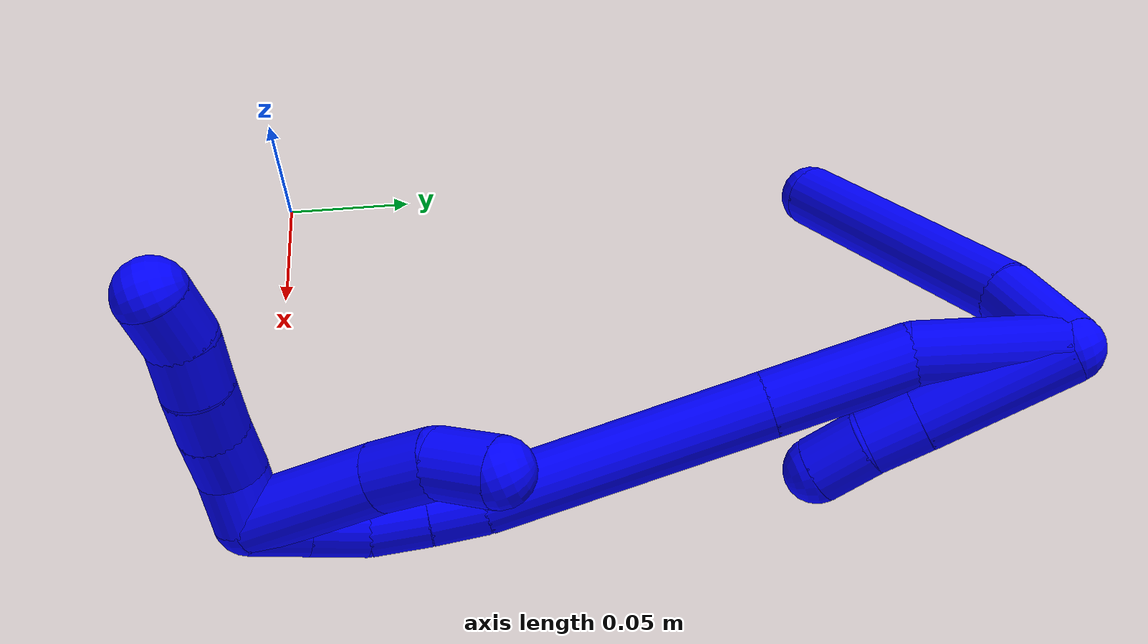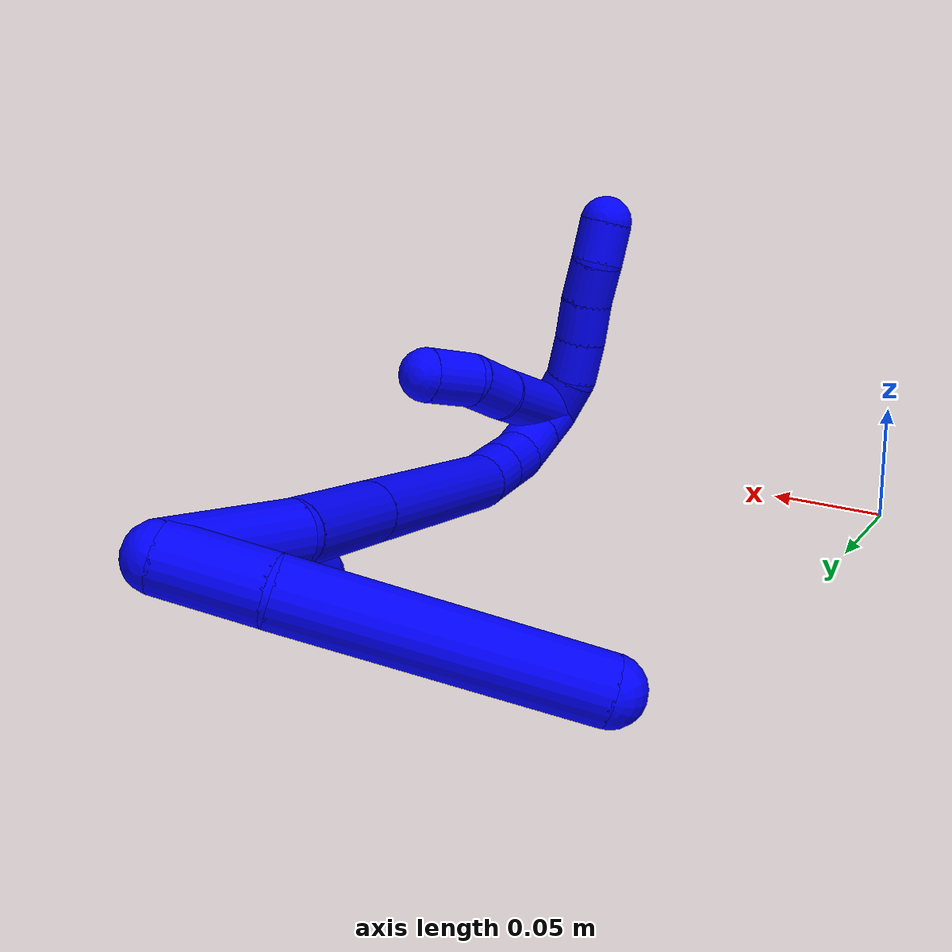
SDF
<sdf version="1.7">
 <world name="default">
  <model name="1">
   <static>0</static>
   <link name="1">
    <collision name="collision-cylinder-e_1_2_8">
     <pose>-0.017676 0.005353 -0.003426 -2.14019 -1.22565 1.81892</pose>
     <geometry><cylinder><radius>0.0125</radius><length>0.037569</length></cylinder></geometry>
     <surface>
      <friction><ode><mu>1.16</mu><mu2>1.16</mu2><slip1>0</slip1><slip2>0</slip2></ode></friction>
      <contact><ode><kp>1e+06</kp><kd>1</kd><max_vel>0</max_vel><min_depth>0.001</min_depth></ode></contact>
     </surface>
    </collision>
    <visual name="visual-cylinder-e_1_2_8">
     <pose>-0.017676 0.005353 -0.003426 -2.14019 -1.22565 1.81892</pose>
     <geometry><cylinder><radius>0.0125</radius><length>0.037569</length></cylinder></geometry>
     <material><ambient>0 0 1 1</ambient></material>
    </visual>
    <collision name="collision-cylinder-e_2_8_6">
     <pose>-0.084607 0.028922 -0.026913 -2.40431 -1.06783 1.98402</pose>
     <geometry><cylinder><radius>0.0125</radius><length>0.112431</length></cylinder></geometry>
     <surface>
      <friction><ode><mu>1.16</mu><mu2>1.16</mu2><slip1>0</slip1><slip2>0</slip2></ode></friction>
      <contact><ode><kp>1e+06</kp><kd>1</kd><max_vel>0</max_vel><min_depth>0.001</min_depth></ode></contact>
     </surface>
    </collision>
    <visual name="visual-cylinder-e_2_8_6">
     <pose>-0.084607 0.028922 -0.026913 -2.40431 -1.06783 1.98402</pose>
     <geometry><cylinder><radius>0.0125</radius><length>0.112431</length></cylinder></geometry>
     <material><ambient>0 0 1 1</ambient></material>
    </visual>
    <collision name="collision-cylinder-e_1_2_9">
     <pose>-0.00109 0.005785 -0.02833 -2.94017 -0.037696 0.36883</pose>
     <geometry><cylinder><radius>0.0125</radius><length>0.05787</length></cylinder></geometry>
     <surface>
      <friction><ode><mu>1.16</mu><mu2>1.16</mu2><slip1>0</slip1><slip2>0</slip2></ode></friction>
      <contact><ode><kp>1e+06</kp><kd>1</kd><max_vel>0</max_vel><min_depth>0.001</min_depth></ode></contact>
     </surface>
    </collision>
    <visual name="visual-cylinder-e_1_2_9">
     <pose>-0.00109 0.005785 -0.02833 -2.94017 -0.037696 0.36883</pose>
     <geometry><cylinder><radius>0.0125</radius><length>0.05787</length></cylinder></geometry>
     <material><ambient>0 0 1 1</ambient></material>
    </visual>
    <collision name="collision-cylinder-e_2_9_10">
     <pose>-0.002714 0.01356 -0.066731 -2.94645 -0.051844 0.517896</pose>
     <geometry><cylinder><radius>0.0125</radius><length>0.02056</length></cylinder></geometry>
     <surface>
      <friction><ode><mu>1.16</mu><mu2>1.16</mu2><slip1>0</slip1><slip2>0</slip2></ode></friction>
      <contact><ode><kp>1e+06</kp><kd>1</kd><max_vel>0</max_vel><min_depth>0.001</min_depth></ode></contact>
     </surface>
    </collision>
    <visual name="visual-cylinder-e_2_9_10">
     <pose>-0.002714 0.01356 -0.066731 -2.94645 -0.051844 0.517896</pose>
     <geometry><cylinder><radius>0.0125</radius><length>0.02056</length></cylinder></geometry>
     <material><ambient>0 0 1 1</ambient></material>
    </visual>
    <collision name="collision-cylinder-e_3_10_5">
     <pose>-0.003728 0.019439 -0.086851 -2.77237 -0.044666 0.238103</pose>
     <geometry><cylinder><radius>0.0125</radius><length>0.02157</length></cylinder></geometry>
     <surface>
      <friction><ode><mu>1.16</mu><mu2>1.16</mu2><slip1>0</slip1><slip2>0</slip2></ode></friction>
      <contact><ode><kp>1e+06</kp><kd>1</kd><max_vel>0</max_vel><min_depth>0.001</min_depth></ode></contact>
     </surface>
    </collision>
    <visual name="visual-cylinder-e_3_10_5">
     <pose>-0.003728 0.019439 -0.086851 -2.77237 -0.044666 0.238103</pose>
     <geometry><cylinder><radius>0.0125</radius><length>0.02157</length></cylinder></geometry>
     <material><ambient>0 0 1 1</ambient></material>
    </visual>
    <collision name="collision-cylinder-e_1_2_11">
     <pose>-0.010254 -0.00016 -0.025338 3.13528 -0.384533 -3.10915</pose>
     <geometry><cylinder><radius>0.0125</radius><length>0.05467</length></cylinder></geometry>
     <surface>
      <friction><ode><mu>1.16</mu><mu2>1.16</mu2><slip1>0</slip1><slip2>0</slip2></ode></friction>
      <contact><ode><kp>1e+06</kp><kd>1</kd><max_vel>0</max_vel><min_depth>0.001</min_depth></ode></contact>
     </surface>
    </collision>
    <visual name="visual-cylinder-e_1_2_11">
     <pose>-0.010254 -0.00016 -0.025338 3.13528 -0.384533 -3.10915</pose>
     <geometry><cylinder><radius>0.0125</radius><length>0.05467</length></cylinder></geometry>
     <material><ambient>0 0 1 1</ambient></material>
    </visual>
    <collision name="collision-cylinder-e_2_11_12">
     <pose>-0.02233 -0.000201 -0.0779 -3.13721 -0.06681 3.01055</pose>
     <geometry><cylinder><radius>0.0125</radius><length>0.054569</length></cylinder></geometry>
     <surface>
      <friction><ode><mu>1.16</mu><mu2>1.16</mu2><slip1>0</slip1><slip2>0</slip2></ode></friction>
      <contact><ode><kp>1e+06</kp><kd>1</kd><max_vel>0</max_vel><min_depth>0.001</min_depth></ode></contact>
     </surface>
    </collision>
    <visual name="visual-cylinder-e_2_11_12">
     <pose>-0.02233 -0.000201 -0.0779 -3.13721 -0.06681 3.01055</pose>
     <geometry><cylinder><radius>0.0125</radius><length>0.054569</length></cylinder></geometry>
     <material><ambient>0 0 1 1</ambient></material>
    </visual>
    <collision name="collision-cylinder-e_3_12_13">
     <pose>-0.027834 0.000166 -0.158789 -3.13699 -0.068508 3.00733</pose>
     <geometry><cylinder><radius>0.0125</radius><length>0.107585</length></cylinder></geometry>
     <surface>
      <friction><ode><mu>1.16</mu><mu2>1.16</mu2><slip1>0</slip1><slip2>0</slip2></ode></friction>
      <contact><ode><kp>1e+06</kp><kd>1</kd><max_vel>0</max_vel><min_depth>0.001</min_depth></ode></contact>
     </surface>
    </collision>
    <visual name="visual-cylinder-e_3_12_13">
     <pose>-0.027834 0.000166 -0.158789 -3.13699 -0.068508 3.00733</pose>
     <geometry><cylinder><radius>0.0125</radius><length>0.107585</length></cylinder></geometry>
     <material><ambient>0 0 1 1</ambient></material>
    </visual>
    <collision name="collision-cylinder-e_4_13_14">
     <pose>-0.032543 -0.001488 -0.222477 2.95414 -0.100376 -0.981498</pose>
     <geometry><cylinder><radius>0.0125</radius><length>0.020506</length></cylinder></geometry>
     <surface>
      <friction><ode><mu>1.16</mu><mu2>1.16</mu2><slip1>0</slip1><slip2>0</slip2></ode></friction>
      <contact><ode><kp>1e+06</kp><kd>1</kd><max_vel>0</max_vel><min_depth>0.001</min_depth></ode></contact>
     </surface>
    </collision>
    <visual name="visual-cylinder-e_4_13_14">
     <pose>-0.032543 -0.001488 -0.222477 2.95414 -0.100376 -0.981498</pose>
     <geometry><cylinder><radius>0.0125</radius><length>0.020506</length></cylinder></geometry>
     <material><ambient>0 0 1 1</ambient></material>
    </visual>
    <collision name="collision-cylinder-e_5_14_15">
     <pose>-0.035045 -0.0055 -0.242837 2.94013 -0.138862 -1.20532</pose>
     <geometry><cylinder><radius>0.0125</radius><length>0.021306</length></cylinder></geometry>
     <surface>
      <friction><ode><mu>1.16</mu><mu2>1.16</mu2><slip1>0</slip1><slip2>0</slip2></ode></friction>
      <contact><ode><kp>1e+06</kp><kd>1</kd><max_vel>0</max_vel><min_depth>0.001</min_depth></ode></contact>
     </surface>
    </collision>
    <visual name="visual-cylinder-e_5_14_15">
     <pose>-0.035045 -0.0055 -0.242837 2.94013 -0.138862 -1.20532</pose>
     <geometry><cylinder><radius>0.0125</radius><length>0.021306</length></cylinder></geometry>
     <material><ambient>0 0 1 1</ambient></material>
    </visual>
    <collision name="collision-cylinder-e_6_15_16">
     <pose>-0.038447 -0.012388 -0.261998 2.64542 -0.189767 -0.718785</pose>
     <geometry><cylinder><radius>0.0125</radius><length>0.020435</length></cylinder></geometry>
     <surface>
      <friction><ode><mu>1.16</mu><mu2>1.16</mu2><slip1>0</slip1><slip2>0</slip2></ode></friction>
      <contact><ode><kp>1e+06</kp><kd>1</kd><max_vel>0</max_vel><min_depth>0.001</min_depth></ode></contact>
     </surface>
    </collision>
    <visual name="visual-cylinder-e_6_15_16">
     <pose>-0.038447 -0.012388 -0.261998 2.64542 -0.189767 -0.718785</pose>
     <geometry><cylinder><radius>0.0125</radius><length>0.020435</length></cylinder></geometry>
     <material><ambient>0 0 1 1</ambient></material>
    </visual>
    <collision name="collision-cylinder-e_7_16_1">
     <pose>-0.042351 -0.02206 -0.279857 2.64507 -0.190017 -0.719183</pose>
     <geometry><cylinder><radius>0.0125</radius><length>0.02093</length></cylinder></geometry>
     <surface>
      <friction><ode><mu>1.16</mu><mu2>1.16</mu2><slip1>0</slip1><slip2>0</slip2></ode></friction>
      <contact><ode><kp>1e+06</kp><kd>1</kd><max_vel>0</max_vel><min_depth>0.001</min_depth></ode></contact>
     </surface>
    </collision>
    <visual name="visual-cylinder-e_7_16_1">
     <pose>-0.042351 -0.02206 -0.279857 2.64507 -0.190017 -0.719183</pose>
     <geometry><cylinder><radius>0.0125</radius><length>0.02093</length></cylinder></geometry>
     <material><ambient>0 0 1 1</ambient></material>
    </visual>
    <collision name="collision-cylinder-e_1_1_17">
     <pose>-0.039149 -0.032682 -0.263987 0.226001 0.199919 0.022762</pose>
     <geometry><cylinder><radius>0.0125</radius><length>0.052149</length></cylinder></geometry>
     <surface>
      <friction><ode><mu>1.16</mu><mu2>1.16</mu2><slip1>0</slip1><slip2>0</slip2></ode></friction>
      <contact><ode><kp>1e+06</kp><kd>1</kd><max_vel>0</max_vel><min_depth>0.001</min_depth></ode></contact>
     </surface>
    </collision>
    <visual name="visual-cylinder-e_1_1_17">
     <pose>-0.039149 -0.032682 -0.263987 0.226001 0.199919 0.022762</pose>
     <geometry><cylinder><radius>0.0125</radius><length>0.052149</length></cylinder></geometry>
     <material><ambient>0 0 1 1</ambient></material>
    </visual>
    <collision name="collision-cylinder-e_2_17_18">
     <pose>-0.030226 -0.042082 -0.228308 0.328604 0.317869 0.053137</pose>
     <geometry><cylinder><radius>0.0125</radius><length>0.023967</length></cylinder></geometry>
     <surface>
      <friction><ode><mu>1.16</mu><mu2>1.16</mu2><slip1>0</slip1><slip2>0</slip2></ode></friction>
      <contact><ode><kp>1e+06</kp><kd>1</kd><max_vel>0</max_vel><min_depth>0.001</min_depth></ode></contact>
     </surface>
    </collision>
    <visual name="visual-cylinder-e_2_17_18">
     <pose>-0.030226 -0.042082 -0.228308 0.328604 0.317869 0.053137</pose>
     <geometry><cylinder><radius>0.0125</radius><length>0.023967</length></cylinder></geometry>
     <material><ambient>0 0 1 1</ambient></material>
    </visual>
    <collision name="collision-cylinder-e_3_18_4">
     <pose>-0.019412 -0.047339 -0.20804 0.165223 0.633442 0.054263</pose>
     <geometry><cylinder><radius>0.0125</radius><length>0.023883</length></cylinder></geometry>
     <surface>
      <friction><ode><mu>1.16</mu><mu2>1.16</mu2><slip1>0</slip1><slip2>0</slip2></ode></friction>
      <contact><ode><kp>1e+06</kp><kd>1</kd><max_vel>0</max_vel><min_depth>0.001</min_depth></ode></contact>
     </surface>
    </collision>
    <visual name="visual-cylinder-e_3_18_4">
     <pose>-0.019412 -0.047339 -0.20804 0.165223 0.633442 0.054263</pose>
     <geometry><cylinder><radius>0.0125</radius><length>0.023883</length></cylinder></geometry>
     <material><ambient>0 0 1 1</ambient></material>
    </visual>
    <collision name="collision-cylinder-e_1_1_19">
     <pose>-0.049689 -0.035278 -0.287485 1.40316 -0.565911 -0.481832</pose>
     <geometry><cylinder><radius>0.0125</radius><length>0.02</length></cylinder></geometry>
     <surface>
      <friction><ode><mu>1.16</mu><mu2>1.16</mu2><slip1>0</slip1><slip2>0</slip2></ode></friction>
      <contact><ode><kp>1e+06</kp><kd>1</kd><max_vel>0</max_vel><min_depth>0.001</min_depth></ode></contact>
     </surface>
    </collision>
    <visual name="visual-cylinder-e_1_1_19">
     <pose>-0.049689 -0.035278 -0.287485 1.40316 -0.565911 -0.481832</pose>
     <geometry><cylinder><radius>0.0125</radius><length>0.02</length></cylinder></geometry>
     <material><ambient>0 0 1 1</ambient></material>
    </visual>
    <collision name="collision-cylinder-e_2_19_20">
     <pose>-0.057891 -0.053088 -0.284686 1.42535 -0.287939 -0.249268</pose>
     <geometry><cylinder><radius>0.0125</radius><length>0.02</length></cylinder></geometry>
     <surface>
      <friction><ode><mu>1.16</mu><mu2>1.16</mu2><slip1>0</slip1><slip2>0</slip2></ode></friction>
      <contact><ode><kp>1e+06</kp><kd>1</kd><max_vel>0</max_vel><min_depth>0.001</min_depth></ode></contact>
     </surface>
    </collision>
    <visual name="visual-cylinder-e_2_19_20">
     <pose>-0.057891 -0.053088 -0.284686 1.42535 -0.287939 -0.249268</pose>
     <geometry><cylinder><radius>0.0125</radius><length>0.02</length></cylinder></geometry>
     <material><ambient>0 0 1 1</ambient></material>
    </visual>
    <collision name="collision-cylinder-e_3_20_21">
     <pose>-0.063043 -0.072105 -0.281339 1.36816 -0.23331 -0.190537</pose>
     <geometry><cylinder><radius>0.0125</radius><length>0.02</length></cylinder></geometry>
     <surface>
      <friction><ode><mu>1.16</mu><mu2>1.16</mu2><slip1>0</slip1><slip2>0</slip2></ode></friction>
      <contact><ode><kp>1e+06</kp><kd>1</kd><max_vel>0</max_vel><min_depth>0.001</min_depth></ode></contact>
     </surface>
    </collision>
    <visual name="visual-cylinder-e_3_20_21">
     <pose>-0.063043 -0.072105 -0.281339 1.36816 -0.23331 -0.190537</pose>
     <geometry><cylinder><radius>0.0125</radius><length>0.02</length></cylinder></geometry>
     <material><ambient>0 0 1 1</ambient></material>
    </visual>
    <collision name="collision-cylinder-e_4_21_22">
     <pose>-0.068564 -0.090866 -0.277261 1.34505 -0.326659 -0.260989</pose>
     <geometry><cylinder><radius>0.0125</radius><length>0.02</length></cylinder></geometry>
     <surface>
      <friction><ode><mu>1.16</mu><mu2>1.16</mu2><slip1>0</slip1><slip2>0</slip2></ode></friction>
      <contact><ode><kp>1e+06</kp><kd>1</kd><max_vel>0</max_vel><min_depth>0.001</min_depth></ode></contact>
     </surface>
    </collision>
    <visual name="visual-cylinder-e_4_21_22">
     <pose>-0.068564 -0.090866 -0.277261 1.34505 -0.326659 -0.260989</pose>
     <geometry><cylinder><radius>0.0125</radius><length>0.02</length></cylinder></geometry>
     <material><ambient>0 0 1 1</ambient></material>
    </visual>
    <collision name="collision-cylinder-e_5_22_3">
     <pose>-0.074276 -0.109778 -0.275096 1.5662 -0.253037 -0.25189</pose>
     <geometry><cylinder><radius>0.0125</radius><length>0.02</length></cylinder></geometry>
     <surface>
      <friction><ode><mu>1.16</mu><mu2>1.16</mu2><slip1>0</slip1><slip2>0</slip2></ode></friction>
      <contact><ode><kp>1e+06</kp><kd>1</kd><max_vel>0</max_vel><min_depth>0.001</min_depth></ode></contact>
     </surface>
    </collision>
    <visual name="visual-cylinder-e_5_22_3">
     <pose>-0.074276 -0.109778 -0.275096 1.5662 -0.253037 -0.25189</pose>
     <geometry><cylinder><radius>0.0125</radius><length>0.02</length></cylinder></geometry>
     <material><ambient>0 0 1 1</ambient></material>
    </visual>
    <collision name="collision-sphere-3">
     <pose>-0.076779 -0.11946 -0.275052 0 -0 0</pose>
     <geometry><sphere><radius>0.0125</radius></sphere></geometry>
     <surface>
      <friction><ode><mu>1.16</mu><mu2>1.16</mu2><slip1>0</slip1><slip2>0</slip2></ode></friction>
      <contact><ode><kp>1e+06</kp><kd>1</kd><max_vel>0</max_vel><min_depth>0.001</min_depth></ode></contact>
     </surface>
    </collision>
    <visual name="visual-sphere-3">
     <pose>-0.076779 -0.11946 -0.275052 0 -0 0</pose>
     <geometry><sphere><radius>0.0125</radius></sphere></geometry>
     <material><ambient>0 0 1 1</ambient></material>
    </visual>
    <collision name="collision-sphere-22">
     <pose>-0.071772 -0.100097 -0.275141 0 -0 0</pose>
     <geometry><sphere><radius>0.0125</radius></sphere></geometry>
     <surface>
      <friction><ode><mu>1.16</mu><mu2>1.16</mu2><slip1>0</slip1><slip2>0</slip2></ode></friction>
      <contact><ode><kp>1e+06</kp><kd>1</kd><max_vel>0</max_vel><min_depth>0.001</min_depth></ode></contact>
     </surface>
    </collision>
    <visual name="visual-sphere-22">
     <pose>-0.071772 -0.100097 -0.275141 0 -0 0</pose>
     <geometry><sphere><radius>0.0125</radius></sphere></geometry>
     <material><ambient>0 0 1 1</ambient></material>
    </visual>
    <collision name="collision-sphere-21">
     <pose>-0.065355 -0.081635 -0.279381 0 -0 0</pose>
     <geometry><sphere><radius>0.0125</radius></sphere></geometry>
     <surface>
      <friction><ode><mu>1.16</mu><mu2>1.16</mu2><slip1>0</slip1><slip2>0</slip2></ode></friction>
      <contact><ode><kp>1e+06</kp><kd>1</kd><max_vel>0</max_vel><min_depth>0.001</min_depth></ode></contact>
     </surface>
    </collision>
    <visual name="visual-sphere-21">
     <pose>-0.065355 -0.081635 -0.279381 0 -0 0</pose>
     <geometry><sphere><radius>0.0125</radius></sphere></geometry>
     <material><ambient>0 0 1 1</ambient></material>
    </visual>
    <collision name="collision-sphere-20">
     <pose>-0.060731 -0.062575 -0.283297 0 -0 0</pose>
     <geometry><sphere><radius>0.0125</radius></sphere></geometry>
     <surface>
      <friction><ode><mu>1.16</mu><mu2>1.16</mu2><slip1>0</slip1><slip2>0</slip2></ode></friction>
      <contact><ode><kp>1e+06</kp><kd>1</kd><max_vel>0</max_vel><min_depth>0.001</min_depth></ode></contact>
     </surface>
    </collision>
    <visual name="visual-sphere-20">
     <pose>-0.060731 -0.062575 -0.283297 0 -0 0</pose>
     <geometry><sphere><radius>0.0125</radius></sphere></geometry>
     <material><ambient>0 0 1 1</ambient></material>
    </visual>
    <collision name="collision-sphere-19">
     <pose>-0.055051 -0.043601 -0.286076 0 -0 0</pose>
     <geometry><sphere><radius>0.0125</radius></sphere></geometry>
     <surface>
      <friction><ode><mu>1.16</mu><mu2>1.16</mu2><slip1>0</slip1><slip2>0</slip2></ode></friction>
      <contact><ode><kp>1e+06</kp><kd>1</kd><max_vel>0</max_vel><min_depth>0.001</min_depth></ode></contact>
     </surface>
    </collision>
    <visual name="visual-sphere-19">
     <pose>-0.055051 -0.043601 -0.286076 0 -0 0</pose>
     <geometry><sphere><radius>0.0125</radius></sphere></geometry>
     <material><ambient>0 0 1 1</ambient></material>
    </visual>
    <collision name="collision-sphere-5">
     <pose>-0.00421 0.023327 -0.096899 0 -0 0</pose>
     <geometry><sphere><radius>0.0125</radius></sphere></geometry>
     <surface>
      <friction><ode><mu>1.16</mu><mu2>1.16</mu2><slip1>0</slip1><slip2>0</slip2></ode></friction>
      <contact><ode><kp>1e+06</kp><kd>1</kd><max_vel>0</max_vel><min_depth>0.001</min_depth></ode></contact>
     </surface>
    </collision>
    <visual name="visual-sphere-5">
     <pose>-0.00421 0.023327 -0.096899 0 -0 0</pose>
     <geometry><sphere><radius>0.0125</radius></sphere></geometry>
     <material><ambient>0 0 1 1</ambient></material>
    </visual>
    <collision name="collision-sphere-10">
     <pose>-0.003246 0.015551 -0.076802 0 -0 0</pose>
     <geometry><sphere><radius>0.0125</radius></sphere></geometry>
     <surface>
      <friction><ode><mu>1.16</mu><mu2>1.16</mu2><slip1>0</slip1><slip2>0</slip2></ode></friction>
      <contact><ode><kp>1e+06</kp><kd>1</kd><max_vel>0</max_vel><min_depth>0.001</min_depth></ode></contact>
     </surface>
    </collision>
    <visual name="visual-sphere-10">
     <pose>-0.003246 0.015551 -0.076802 0 -0 0</pose>
     <geometry><sphere><radius>0.0125</radius></sphere></geometry>
     <material><ambient>0 0 1 1</ambient></material>
    </visual>
    <collision name="collision-sphere-6">
     <pose>-0.133861 0.047139 -0.046973 0 -0 0</pose>
     <geometry><sphere><radius>0.0125</radius></sphere></geometry>
     <surface>
      <friction><ode><mu>1.16</mu><mu2>1.16</mu2><slip1>0</slip1><slip2>0</slip2></ode></friction>
      <contact><ode><kp>1e+06</kp><kd>1</kd><max_vel>0</max_vel><min_depth>0.001</min_depth></ode></contact>
     </surface>
    </collision>
    <visual name="visual-sphere-6">
     <pose>-0.133861 0.047139 -0.046973 0 -0 0</pose>
     <geometry><sphere><radius>0.0125</radius></sphere></geometry>
     <material><ambient>0 0 1 1</ambient></material>
    </visual>
    <collision name="collision-sphere-9">
     <pose>-0.002181 0.01157 -0.056659 0 -0 0</pose>
     <geometry><sphere><radius>0.0125</radius></sphere></geometry>
     <surface>
      <friction><ode><mu>1.16</mu><mu2>1.16</mu2><slip1>0</slip1><slip2>0</slip2></ode></friction>
      <contact><ode><kp>1e+06</kp><kd>1</kd><max_vel>0</max_vel><min_depth>0.001</min_depth></ode></contact>
     </surface>
    </collision>
    <visual name="visual-sphere-9">
     <pose>-0.002181 0.01157 -0.056659 0 -0 0</pose>
     <geometry><sphere><radius>0.0125</radius></sphere></geometry>
     <material><ambient>0 0 1 1</ambient></material>
    </visual>
    <collision name="collision-sphere-2">
     <geometry><sphere><radius>0.0125</radius></sphere></geometry>
     <surface>
      <friction><ode><mu>1.16</mu><mu2>1.16</mu2><slip1>0</slip1><slip2>0</slip2></ode></friction>
      <contact><ode><kp>1e+06</kp><kd>1</kd><max_vel>0</max_vel><min_depth>0.001</min_depth></ode></contact>
     </surface>
    </collision>
    <visual name="visual-sphere-2">
     <geometry><sphere><radius>0.0125</radius></sphere></geometry>
     <material><ambient>0 0 1 1</ambient></material>
    </visual>
    <collision name="collision-sphere-8">
     <pose>-0.035353 0.010705 -0.006853 0 -0 0</pose>
     <geometry><sphere><radius>0.0125</radius></sphere></geometry>
     <surface>
      <friction><ode><mu>1.16</mu><mu2>1.16</mu2><slip1>0</slip1><slip2>0</slip2></ode></friction>
      <contact><ode><kp>1e+06</kp><kd>1</kd><max_vel>0</max_vel><min_depth>0.001</min_depth></ode></contact>
     </surface>
    </collision>
    <visual name="visual-sphere-8">
     <pose>-0.035353 0.010705 -0.006853 0 -0 0</pose>
     <geometry><sphere><radius>0.0125</radius></sphere></geometry>
     <material><ambient>0 0 1 1</ambient></material>
    </visual>
    <collision name="collision-sphere-11">
     <pose>-0.020508 -0.00032 -0.050677 0 -0 0</pose>
     <geometry><sphere><radius>0.0125</radius></sphere></geometry>
     <surface>
      <friction><ode><mu>1.16</mu><mu2>1.16</mu2><slip1>0</slip1><slip2>0</slip2></ode></friction>
      <contact><ode><kp>1e+06</kp><kd>1</kd><max_vel>0</max_vel><min_depth>0.001</min_depth></ode></contact>
     </surface>
    </collision>
    <visual name="visual-sphere-11">
     <pose>-0.020508 -0.00032 -0.050677 0 -0 0</pose>
     <geometry><sphere><radius>0.0125</radius></sphere></geometry>
     <material><ambient>0 0 1 1</ambient></material>
    </visual>
    <collision name="collision-sphere-12">
     <pose>-0.024151 -8.1e-05 -0.105124 0 -0 0</pose>
     <geometry><sphere><radius>0.0125</radius></sphere></geometry>
     <surface>
      <friction><ode><mu>1.16</mu><mu2>1.16</mu2><slip1>0</slip1><slip2>0</slip2></ode></friction>
      <contact><ode><kp>1e+06</kp><kd>1</kd><max_vel>0</max_vel><min_depth>0.001</min_depth></ode></contact>
     </surface>
    </collision>
    <visual name="visual-sphere-12">
     <pose>-0.024151 -8.1e-05 -0.105124 0 -0 0</pose>
     <geometry><sphere><radius>0.0125</radius></sphere></geometry>
     <material><ambient>0 0 1 1</ambient></material>
    </visual>
    <collision name="collision-sphere-13">
     <pose>-0.031516 0.000413 -0.212455 0 -0 0</pose>
     <geometry><sphere><radius>0.0125</radius></sphere></geometry>
     <surface>
      <friction><ode><mu>1.16</mu><mu2>1.16</mu2><slip1>0</slip1><slip2>0</slip2></ode></friction>
      <contact><ode><kp>1e+06</kp><kd>1</kd><max_vel>0</max_vel><min_depth>0.001</min_depth></ode></contact>
     </surface>
    </collision>
    <visual name="visual-sphere-13">
     <pose>-0.031516 0.000413 -0.212455 0 -0 0</pose>
     <geometry><sphere><radius>0.0125</radius></sphere></geometry>
     <material><ambient>0 0 1 1</ambient></material>
    </visual>
    <collision name="collision-sphere-14">
     <pose>-0.033571 -0.003389 -0.2325 0 -0 0</pose>
     <geometry><sphere><radius>0.0125</radius></sphere></geometry>
     <surface>
      <friction><ode><mu>1.16</mu><mu2>1.16</mu2><slip1>0</slip1><slip2>0</slip2></ode></friction>
      <contact><ode><kp>1e+06</kp><kd>1</kd><max_vel>0</max_vel><min_depth>0.001</min_depth></ode></contact>
     </surface>
    </collision>
    <visual name="visual-sphere-14">
     <pose>-0.033571 -0.003389 -0.2325 0 -0 0</pose>
     <geometry><sphere><radius>0.0125</radius></sphere></geometry>
     <material><ambient>0 0 1 1</ambient></material>
    </visual>
    <collision name="collision-sphere-15">
     <pose>-0.03652 -0.007611 -0.253174 0 -0 0</pose>
     <geometry><sphere><radius>0.0125</radius></sphere></geometry>
     <surface>
      <friction><ode><mu>1.16</mu><mu2>1.16</mu2><slip1>0</slip1><slip2>0</slip2></ode></friction>
      <contact><ode><kp>1e+06</kp><kd>1</kd><max_vel>0</max_vel><min_depth>0.001</min_depth></ode></contact>
     </surface>
    </collision>
    <visual name="visual-sphere-15">
     <pose>-0.03652 -0.007611 -0.253174 0 -0 0</pose>
     <geometry><sphere><radius>0.0125</radius></sphere></geometry>
     <material><ambient>0 0 1 1</ambient></material>
    </visual>
    <collision name="collision-sphere-16">
     <pose>-0.040374 -0.017165 -0.270822 0 -0 0</pose>
     <geometry><sphere><radius>0.0125</radius></sphere></geometry>
     <surface>
      <friction><ode><mu>1.16</mu><mu2>1.16</mu2><slip1>0</slip1><slip2>0</slip2></ode></friction>
      <contact><ode><kp>1e+06</kp><kd>1</kd><max_vel>0</max_vel><min_depth>0.001</min_depth></ode></contact>
     </surface>
    </collision>
    <visual name="visual-sphere-16">
     <pose>-0.040374 -0.017165 -0.270822 0 -0 0</pose>
     <geometry><sphere><radius>0.0125</radius></sphere></geometry>
     <material><ambient>0 0 1 1</ambient></material>
    </visual>
    <collision name="collision-sphere-1">
     <pose>-0.044328 -0.026956 -0.288893 0 -0 0</pose>
     <geometry><sphere><radius>0.0125</radius></sphere></geometry>
     <surface>
      <friction><ode><mu>1.16</mu><mu2>1.16</mu2><slip1>0</slip1><slip2>0</slip2></ode></friction>
      <contact><ode><kp>1e+06</kp><kd>1</kd><max_vel>0</max_vel><min_depth>0.001</min_depth></ode></contact>
     </surface>
    </collision>
    <visual name="visual-sphere-1">
     <pose>-0.044328 -0.026956 -0.288893 0 -0 0</pose>
     <geometry><sphere><radius>0.0125</radius></sphere></geometry>
     <material><ambient>0 0 1 1</ambient></material>
    </visual>
    <collision name="collision-sphere-18">
     <pose>-0.02648 -0.045756 -0.217534 0 -0 0</pose>
     <geometry><sphere><radius>0.0125</radius></sphere></geometry>
     <surface>
      <friction><ode><mu>1.16</mu><mu2>1.16</mu2><slip1>0</slip1><slip2>0</slip2></ode></friction>
      <contact><ode><kp>1e+06</kp><kd>1</kd><max_vel>0</max_vel><min_depth>0.001</min_depth></ode></contact>
     </surface>
    </collision>
    <visual name="visual-sphere-18">
     <pose>-0.02648 -0.045756 -0.217534 0 -0 0</pose>
     <geometry><sphere><radius>0.0125</radius></sphere></geometry>
     <material><ambient>0 0 1 1</ambient></material>
    </visual>
    <collision name="collision-sphere-17">
     <pose>-0.033971 -0.038409 -0.239082 0 -0 0</pose>
     <geometry><sphere><radius>0.0125</radius></sphere></geometry>
     <surface>
      <friction><ode><mu>1.16</mu><mu2>1.16</mu2><slip1>0</slip1><slip2>0</slip2></ode></friction>
      <contact><ode><kp>1e+06</kp><kd>1</kd><max_vel>0</max_vel><min_depth>0.001</min_depth></ode></contact>
     </surface>
    </collision>
    <visual name="visual-sphere-17">
     <pose>-0.033971 -0.038409 -0.239082 0 -0 0</pose>
     <geometry><sphere><radius>0.0125</radius></sphere></geometry>
     <material><ambient>0 0 1 1</ambient></material>
    </visual>
    <collision name="collision-sphere-4">
     <pose>-0.012343 -0.048922 -0.198546 0 -0 0</pose>
     <geometry><sphere><radius>0.0125</radius></sphere></geometry>
     <surface>
      <friction><ode><mu>1.16</mu><mu2>1.16</mu2><slip1>0</slip1><slip2>0</slip2></ode></friction>
      <contact><ode><kp>1e+06</kp><kd>1</kd><max_vel>0</max_vel><min_depth>0.001</min_depth></ode></contact>
     </surface>
    </collision>
    <visual name="visual-sphere-4">
     <pose>-0.012343 -0.048922 -0.198546 0 -0 0</pose>
     <geometry><sphere><radius>0.0125</radius></sphere></geometry>
     <material><ambient>0 0 1 1</ambient></material>
    </visual>
    <inertial>
     <pose>-0.036979 -0.009926 -0.138708 0 -0 0</pose>
     <mass>0.75</mass>
     <inertia>
      <ixx>-5.4e-05</ixx>
      <ixy>0</ixy>
      <ixz>0</ixz>
      <iyy>0.000311</iyy>
      <iyz>0</iyz>
      <izz>6.8e-05</izz>
     </inertia>
    </inertial>
   </link>
   <pose>0.150324 0.288473 0.05702 -1.34909 0.079296 0.23138</pose>
  </model>
 </world>
</sdf>
